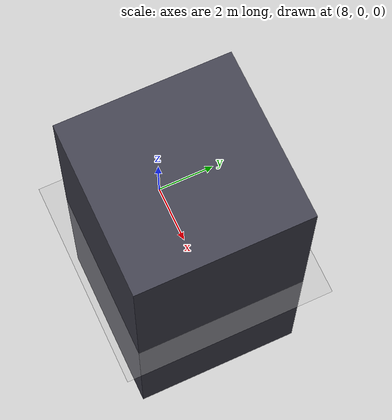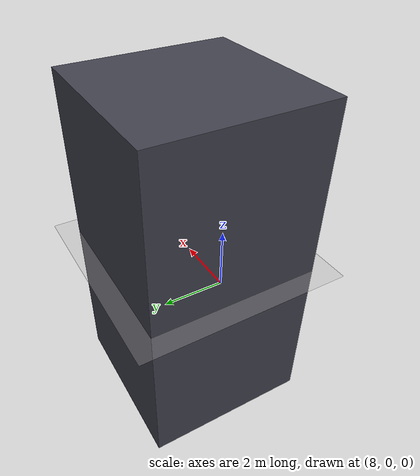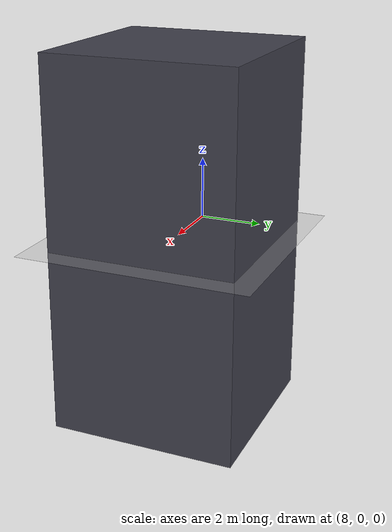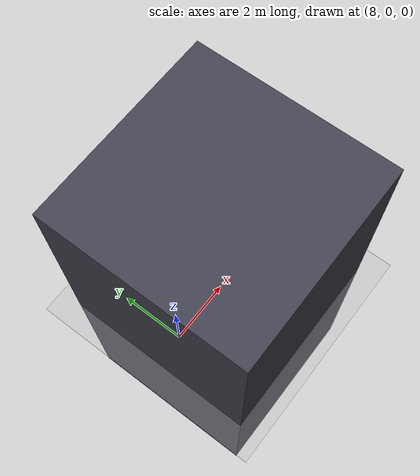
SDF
<?xml version="1.0"?>
<!-- Legacy reference only: do not use as PX4_GZ_WORLD — it breaks x500 spawn. -->
<!-- Production layout: six corridor buildings are injected into PX4 default.sdf at Docker build; see docker/inject_obstacle_into_default_world.py -->
<sdf version="1.7">
  <world name="default">
    <gravity>0 0 -9.8066</gravity>

    <scene>
      <ambient>0.4 0.4 0.4 1</ambient>
      <background>0.8 0.8 0.8 1</background>
    </scene>

    <light name="sun" type="directional">
      <cast_shadows>true</cast_shadows>
      <pose>0 0 10 0 0 0</pose>
      <diffuse>0.8 0.8 0.8 1</diffuse>
      <specular>0.2 0.2 0.2 1</specular>
      <direction>-0.5 0.1 -1</direction>
    </light>

    <!-- Ground plane -->
    <model name="ground_plane">
      <static>true</static>
      <pose>0 0 0 0 0 0</pose>
      <link name="link">
        <collision name="collision">
          <geometry>
            <plane>
              <normal>0 0 1</normal>
              <size>200 200</size>
            </plane>
          </geometry>
        </collision>
        <visual name="visual">
          <geometry>
            <plane>
              <normal>0 0 1</normal>
              <size>200 200</size>
            </plane>
          </geometry>
          <material>
            <ambient>0.6 0.6 0.6 1</ambient>
            <diffuse>0.7 0.7 0.7 1</diffuse>
          </material>
        </visual>
      </link>
    </model>

    <!-- Simple \"building\" obstacle: a tall static box -->
    <!-- Placed on +X axis so a line mission from (0,0) -> (20,0) intersects it -->
    <model name="building_obstacle">
      <static>true</static>
      <pose>10 0 0 0 0 0</pose>
      <link name="link">
        <collision name="collision">
          <geometry>
            <box>
              <size>6 6 12</size>
            </box>
          </geometry>
        </collision>
        <visual name="visual">
          <geometry>
            <box>
              <size>6 6 12</size>
            </box>
          </geometry>
          <material>
            <ambient>0.2 0.2 0.25 1</ambient>
            <diffuse>0.25 0.25 0.3 1</diffuse>
          </material>
        </visual>
      </link>
    </model>
  </world>
</sdf>
